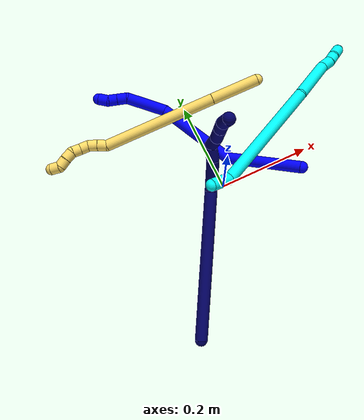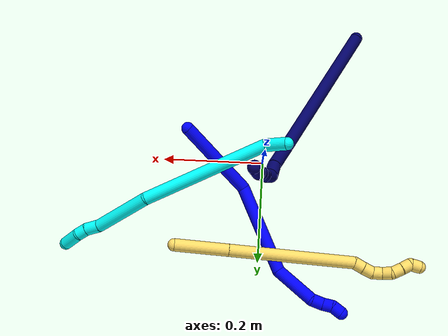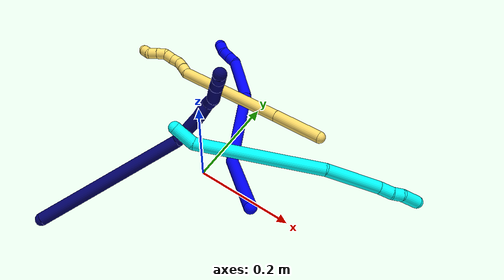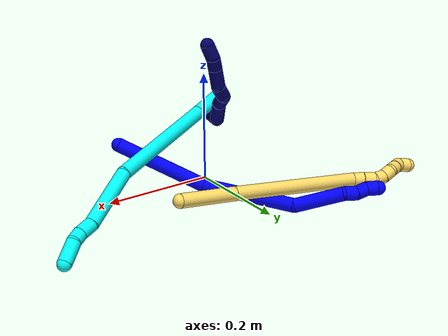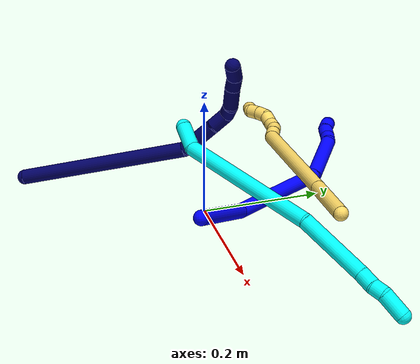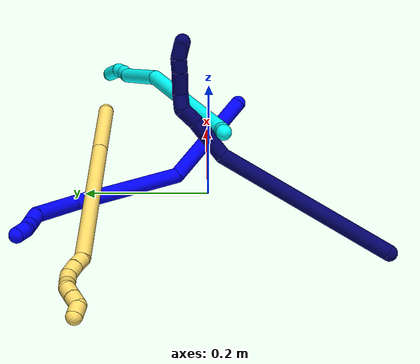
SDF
<sdf version="1.7">
 <world name="default">
  <model name="photoneo_s_sensor">
   <static>1</static>
   <pose>0 0 2 1.57079 1.57079 3.14159</pose>
   <link name="link">
    <inertial><mass>0.1</mass></inertial>
    <sensor name="sensor" type="depth">
     <update_rate>30</update_rate>
     <camera>
      <horizontal_fov>1.22</horizontal_fov>
      <image><width>1920</width><height>1200</height><format>B8G8R8</format></image>
      <clip><near>0.1</near><far>4</far></clip>
      <depth_camera><output>points</output></depth_camera>
     </camera>
     <plugin name="camera_plugin" filename="libgazebo_ros_depth_camera.so">
      <baseline>0.2</baseline>
      <alwaysOn>1</alwaysOn>
      <updateRate>0.0</updateRate>
      <cameraName>camera_ir</cameraName>
      <imageTopicName>/camera/color/image_raw</imageTopicName>
      <cameraInfoTopicName>/camera/color/camera_info</cameraInfoTopicName>
      <depthImageTopicName>/camera/depth/image_raw</depthImageTopicName>
      <depthImageCameraInfoTopicName>/camera/depth/camera_info</depthImageCameraInfoTopicName>
      <pointCloudTopicName>/camera/depth/points</pointCloudTopicName>
      <frameName>fr_optical</frameName>
      <pointCloudCutoff>0.1</pointCloudCutoff>
      <pointCloudCutoffMax>2.0</pointCloudCutoffMax>
      <distortionK1>0</distortionK1>
      <distortionK2>0</distortionK2>
      <distortionK3>0</distortionK3>
      <distortionT1>0</distortionT1>
      <distortionT2>0</distortionT2>
      <CxPrime>0</CxPrime>
      <Cx>0</Cx>
      <Cy>0</Cy>
      <focalLength>0</focalLength>
      <hackBaseline>0</hackBaseline>
     </plugin>
    </sensor>
   </link>
  </model>
  <model name="bin">
   <static>1</static>
   <link name="bottom">
    <collision name="collision-bottom">
     <pose>0 0 -0.01 0 -0 0</pose>
     <geometry><box><size>0.8 0.6 0.02</size></box></geometry>
     <surface>
      <friction><ode><mu>100</mu><mu2>100</mu2></ode></friction>
      <contact><collide_bitmask>65535</collide_bitmask></contact>
     </surface>
    </collision>
   </link>
   <link name="west_wall">
    <collision name="collision-west_wall">
     <pose>-0.41 0 0.1 0 -0 0</pose>
     <geometry><box><size>0.02 0.6 0.2</size></box></geometry>
     <surface>
      <friction><ode><mu>100</mu><mu2>100</mu2></ode></friction>
      <contact><collide_bitmask>65535</collide_bitmask></contact>
     </surface>
    </collision>
   </link>
   <link name="east_wall">
    <collision name="collision-east_wall">
     <pose>0.41 0 0.1 0 -0 0</pose>
     <geometry><box><size>0.02 0.6 0.2</size></box></geometry>
     <surface>
      <friction><ode><mu>100</mu><mu2>100</mu2></ode></friction>
      <contact><collide_bitmask>65535</collide_bitmask></contact>
     </surface>
    </collision>
   </link>
   <link name="south_wall">
    <collision name="collision-south_wall">
     <pose>0 -0.31 0.1 0 -0 0</pose>
     <geometry><box><size>0.8 0.02 0.2</size></box></geometry>
     <surface>
      <friction><ode><mu>100</mu><mu2>100</mu2></ode></friction>
      <contact><collide_bitmask>65535</collide_bitmask></contact>
     </surface>
    </collision>
   </link>
   <link name="north_wall">
    <collision name="collision-north_wall">
     <pose>0 0.31 0.1 0 -0 0</pose>
     <geometry><box><size>0.8 0.02 0.2</size></box></geometry>
     <surface>
      <friction><ode><mu>100</mu><mu2>100</mu2></ode></friction>
      <contact><collide_bitmask>65535</collide_bitmask></contact>
     </surface>
    </collision>
   </link>
  </model>
  <model name="1">
   <static>0</static>
   <link name="1">
    <collision name="collision-cylinder-e_1_1_4">
     <pose>-0.01667 0.081666 0.012676 -1.41681 -0.199033 0.170673</pose>
     <geometry><cylinder><radius>0.0125</radius><length>0.168617</length></cylinder></geometry>
     <surface>
      <friction><ode><mu>1.16</mu><mu2>1.16</mu2><slip1>0</slip1><slip2>0</slip2></ode></friction>
      <contact><ode><kp>1e+06</kp><kd>1</kd><max_vel>0</max_vel><min_depth>0.001</min_depth></ode></contact>
     </surface>
    </collision>
    <visual name="visual-cylinder-e_1_1_4">
     <pose>-0.01667 0.081666 0.012676 -1.41681 -0.199033 0.170673</pose>
     <geometry><cylinder><radius>0.0125</radius><length>0.168617</length></cylinder></geometry>
     <material><ambient>0 0 1 1</ambient></material>
    </visual>
    <collision name="collision-cylinder-e_2_4_5">
     <pose>-0.069349 0.225975 0.079307 -0.859769 -0.410774 0.190448</pose>
     <geometry><cylinder><radius>0.0125</radius><length>0.180354</length></cylinder></geometry>
     <surface>
      <friction><ode><mu>1.16</mu><mu2>1.16</mu2><slip1>0</slip1><slip2>0</slip2></ode></friction>
      <contact><ode><kp>1e+06</kp><kd>1</kd><max_vel>0</max_vel><min_depth>0.001</min_depth></ode></contact>
     </surface>
    </collision>
    <visual name="visual-cylinder-e_2_4_5">
     <pose>-0.069349 0.225975 0.079307 -0.859769 -0.410774 0.190448</pose>
     <geometry><cylinder><radius>0.0125</radius><length>0.180354</length></cylinder></geometry>
     <material><ambient>0 0 1 1</ambient></material>
    </visual>
    <collision name="collision-cylinder-e_3_5_6">
     <pose>-0.139114 0.314005 0.14421 -1.16363 -0.884554 0.603938</pose>
     <geometry><cylinder><radius>0.0125</radius><length>0.087267</length></cylinder></geometry>
     <surface>
      <friction><ode><mu>1.16</mu><mu2>1.16</mu2><slip1>0</slip1><slip2>0</slip2></ode></friction>
      <contact><ode><kp>1e+06</kp><kd>1</kd><max_vel>0</max_vel><min_depth>0.001</min_depth></ode></contact>
     </surface>
    </collision>
    <visual name="visual-cylinder-e_3_5_6">
     <pose>-0.139114 0.314005 0.14421 -1.16363 -0.884554 0.603938</pose>
     <geometry><cylinder><radius>0.0125</radius><length>0.087267</length></cylinder></geometry>
     <material><ambient>0 0 1 1</ambient></material>
    </visual>
    <collision name="collision-cylinder-e_4_6_7">
     <pose>-0.179678 0.348511 0.153518 -1.7489 -0.633638 0.747441</pose>
     <geometry><cylinder><radius>0.0125</radius><length>0.022995</length></cylinder></geometry>
     <surface>
      <friction><ode><mu>1.16</mu><mu2>1.16</mu2><slip1>0</slip1><slip2>0</slip2></ode></friction>
      <contact><ode><kp>1e+06</kp><kd>1</kd><max_vel>0</max_vel><min_depth>0.001</min_depth></ode></contact>
     </surface>
    </collision>
    <visual name="visual-cylinder-e_4_6_7">
     <pose>-0.179678 0.348511 0.153518 -1.7489 -0.633638 0.747441</pose>
     <geometry><cylinder><radius>0.0125</radius><length>0.022995</length></cylinder></geometry>
     <material><ambient>0 0 1 1</ambient></material>
    </visual>
    <collision name="collision-cylinder-e_5_7_8">
     <pose>-0.194711 0.363175 0.14968 -1.94796 -0.943459 1.28802</pose>
     <geometry><cylinder><radius>0.0125</radius><length>0.02032</length></cylinder></geometry>
     <surface>
      <friction><ode><mu>1.16</mu><mu2>1.16</mu2><slip1>0</slip1><slip2>0</slip2></ode></friction>
      <contact><ode><kp>1e+06</kp><kd>1</kd><max_vel>0</max_vel><min_depth>0.001</min_depth></ode></contact>
     </surface>
    </collision>
    <visual name="visual-cylinder-e_5_7_8">
     <pose>-0.194711 0.363175 0.14968 -1.94796 -0.943459 1.28802</pose>
     <geometry><cylinder><radius>0.0125</radius><length>0.02032</length></cylinder></geometry>
     <material><ambient>0 0 1 1</ambient></material>
    </visual>
    <collision name="collision-cylinder-e_6_8_2">
     <pose>-0.209609 0.376286 0.149136 -1.35579 -0.711162 0.581111</pose>
     <geometry><cylinder><radius>0.0125</radius><length>0.020448</length></cylinder></geometry>
     <surface>
      <friction><ode><mu>1.16</mu><mu2>1.16</mu2><slip1>0</slip1><slip2>0</slip2></ode></friction>
      <contact><ode><kp>1e+06</kp><kd>1</kd><max_vel>0</max_vel><min_depth>0.001</min_depth></ode></contact>
     </surface>
    </collision>
    <visual name="visual-cylinder-e_6_8_2">
     <pose>-0.209609 0.376286 0.149136 -1.35579 -0.711162 0.581111</pose>
     <geometry><cylinder><radius>0.0125</radius><length>0.020448</length></cylinder></geometry>
     <material><ambient>0 0 1 1</ambient></material>
    </visual>
    <collision name="collision-sphere-2">
     <pose>-0.216282 0.383854 0.150789 0 -0 0</pose>
     <geometry><sphere><radius>0.0125</radius></sphere></geometry>
     <surface>
      <friction><ode><mu>1.16</mu><mu2>1.16</mu2><slip1>0</slip1><slip2>0</slip2></ode></friction>
      <contact><ode><kp>1e+06</kp><kd>1</kd><max_vel>0</max_vel><min_depth>0.001</min_depth></ode></contact>
     </surface>
    </collision>
    <visual name="visual-sphere-2">
     <pose>-0.216282 0.383854 0.150789 0 -0 0</pose>
     <geometry><sphere><radius>0.0125</radius></sphere></geometry>
     <material><ambient>0 0 1 1</ambient></material>
    </visual>
    <collision name="collision-sphere-4">
     <pose>-0.033339 0.163332 0.025352 0 -0 0</pose>
     <geometry><sphere><radius>0.0125</radius></sphere></geometry>
     <surface>
      <friction><ode><mu>1.16</mu><mu2>1.16</mu2><slip1>0</slip1><slip2>0</slip2></ode></friction>
      <contact><ode><kp>1e+06</kp><kd>1</kd><max_vel>0</max_vel><min_depth>0.001</min_depth></ode></contact>
     </surface>
    </collision>
    <visual name="visual-sphere-4">
     <pose>-0.033339 0.163332 0.025352 0 -0 0</pose>
     <geometry><sphere><radius>0.0125</radius></sphere></geometry>
     <material><ambient>0 0 1 1</ambient></material>
    </visual>
    <collision name="collision-sphere-1">
     <geometry><sphere><radius>0.0125</radius></sphere></geometry>
     <surface>
      <friction><ode><mu>1.16</mu><mu2>1.16</mu2><slip1>0</slip1><slip2>0</slip2></ode></friction>
      <contact><ode><kp>1e+06</kp><kd>1</kd><max_vel>0</max_vel><min_depth>0.001</min_depth></ode></contact>
     </surface>
    </collision>
    <visual name="visual-sphere-1">
     <geometry><sphere><radius>0.0125</radius></sphere></geometry>
     <material><ambient>0 0 1 1</ambient></material>
    </visual>
    <collision name="collision-sphere-8">
     <pose>-0.202936 0.368719 0.147483 0 -0 0</pose>
     <geometry><sphere><radius>0.0125</radius></sphere></geometry>
     <surface>
      <friction><ode><mu>1.16</mu><mu2>1.16</mu2><slip1>0</slip1><slip2>0</slip2></ode></friction>
      <contact><ode><kp>1e+06</kp><kd>1</kd><max_vel>0</max_vel><min_depth>0.001</min_depth></ode></contact>
     </surface>
    </collision>
    <visual name="visual-sphere-8">
     <pose>-0.202936 0.368719 0.147483 0 -0 0</pose>
     <geometry><sphere><radius>0.0125</radius></sphere></geometry>
     <material><ambient>0 0 1 1</ambient></material>
    </visual>
    <collision name="collision-sphere-5">
     <pose>-0.105358 0.288617 0.133262 0 -0 0</pose>
     <geometry><sphere><radius>0.0125</radius></sphere></geometry>
     <surface>
      <friction><ode><mu>1.16</mu><mu2>1.16</mu2><slip1>0</slip1><slip2>0</slip2></ode></friction>
      <contact><ode><kp>1e+06</kp><kd>1</kd><max_vel>0</max_vel><min_depth>0.001</min_depth></ode></contact>
     </surface>
    </collision>
    <visual name="visual-sphere-5">
     <pose>-0.105358 0.288617 0.133262 0 -0 0</pose>
     <geometry><sphere><radius>0.0125</radius></sphere></geometry>
     <material><ambient>0 0 1 1</ambient></material>
    </visual>
    <collision name="collision-sphere-6">
     <pose>-0.17287 0.339392 0.155159 0 -0 0</pose>
     <geometry><sphere><radius>0.0125</radius></sphere></geometry>
     <surface>
      <friction><ode><mu>1.16</mu><mu2>1.16</mu2><slip1>0</slip1><slip2>0</slip2></ode></friction>
      <contact><ode><kp>1e+06</kp><kd>1</kd><max_vel>0</max_vel><min_depth>0.001</min_depth></ode></contact>
     </surface>
    </collision>
    <visual name="visual-sphere-6">
     <pose>-0.17287 0.339392 0.155159 0 -0 0</pose>
     <geometry><sphere><radius>0.0125</radius></sphere></geometry>
     <material><ambient>0 0 1 1</ambient></material>
    </visual>
    <collision name="collision-sphere-7">
     <pose>-0.186485 0.35763 0.151876 0 -0 0</pose>
     <geometry><sphere><radius>0.0125</radius></sphere></geometry>
     <surface>
      <friction><ode><mu>1.16</mu><mu2>1.16</mu2><slip1>0</slip1><slip2>0</slip2></ode></friction>
      <contact><ode><kp>1e+06</kp><kd>1</kd><max_vel>0</max_vel><min_depth>0.001</min_depth></ode></contact>
     </surface>
    </collision>
    <visual name="visual-sphere-7">
     <pose>-0.186485 0.35763 0.151876 0 -0 0</pose>
     <geometry><sphere><radius>0.0125</radius></sphere></geometry>
     <material><ambient>0 0 1 1</ambient></material>
    </visual>
    <inertial>
     <pose>-0.079664 0.210031 0.077293 0 -0 0</pose>
     <mass>0.5</mass>
     <inertia>
      <ixx>0.001032</ixx>
      <ixy>0</ixy>
      <ixz>0</ixz>
      <iyy>0.000674</iyy>
      <iyz>0</iyz>
      <izz>-0.000437</izz>
     </inertia>
    </inertial>
   </link>
   <pose>0.149135 -0.051811 0.082267 -1.23231 0.852265 -0.203313</pose>
  </model>
  <model name="3">
   <static>0</static>
   <link name="3">
    <collision name="collision-cylinder-e_1_1_4">
     <pose>0.013129 -0.010411 -0.01483 2.52952 0.627028 1.59654</pose>
     <geometry><cylinder><radius>0.0125</radius><length>0.044751</length></cylinder></geometry>
     <surface>
      <friction><ode><mu>1.16</mu><mu2>1.16</mu2><slip1>0</slip1><slip2>0</slip2></ode></friction>
      <contact><ode><kp>1e+06</kp><kd>1</kd><max_vel>0</max_vel><min_depth>0.001</min_depth></ode></contact>
     </surface>
    </collision>
    <visual name="visual-cylinder-e_1_1_4">
     <pose>0.013129 -0.010411 -0.01483 2.52952 0.627028 1.59654</pose>
     <geometry><cylinder><radius>0.0125</radius><length>0.044751</length></cylinder></geometry>
     <material><ambient>0.003922 1 0.996078 1</ambient></material>
    </visual>
    <collision name="collision-cylinder-e_2_4_5">
     <pose>0.13179 -0.026772 -0.095726 3.05177 1.00964 2.97929</pose>
     <geometry><cylinder><radius>0.0125</radius><length>0.249299</length></cylinder></geometry>
     <surface>
      <friction><ode><mu>1.16</mu><mu2>1.16</mu2><slip1>0</slip1><slip2>0</slip2></ode></friction>
      <contact><ode><kp>1e+06</kp><kd>1</kd><max_vel>0</max_vel><min_depth>0.001</min_depth></ode></contact>
     </surface>
    </collision>
    <visual name="visual-cylinder-e_2_4_5">
     <pose>0.13179 -0.026772 -0.095726 3.05177 1.00964 2.97929</pose>
     <geometry><cylinder><radius>0.0125</radius><length>0.249299</length></cylinder></geometry>
     <material><ambient>0.003922 1 0.996078 1</ambient></material>
    </visual>
    <collision name="collision-cylinder-e_3_5_6">
     <pose>0.275433 -0.035772 -0.206206 3.07303 0.707993 2.95653</pose>
     <geometry><cylinder><radius>0.0125</radius><length>0.117202</length></cylinder></geometry>
     <surface>
      <friction><ode><mu>1.16</mu><mu2>1.16</mu2><slip1>0</slip1><slip2>0</slip2></ode></friction>
      <contact><ode><kp>1e+06</kp><kd>1</kd><max_vel>0</max_vel><min_depth>0.001</min_depth></ode></contact>
     </surface>
    </collision>
    <visual name="visual-cylinder-e_3_5_6">
     <pose>0.275433 -0.035772 -0.206206 3.07303 0.707993 2.95653</pose>
     <geometry><cylinder><radius>0.0125</radius><length>0.117202</length></cylinder></geometry>
     <material><ambient>0.003922 1 0.996078 1</ambient></material>
    </visual>
    <collision name="collision-cylinder-e_4_6_7">
     <pose>0.324003 -0.042079 -0.258889 2.76638 0.866522 2.36272</pose>
     <geometry><cylinder><radius>0.0125</radius><length>0.027455</length></cylinder></geometry>
     <surface>
      <friction><ode><mu>1.16</mu><mu2>1.16</mu2><slip1>0</slip1><slip2>0</slip2></ode></friction>
      <contact><ode><kp>1e+06</kp><kd>1</kd><max_vel>0</max_vel><min_depth>0.001</min_depth></ode></contact>
     </surface>
    </collision>
    <visual name="visual-cylinder-e_4_6_7">
     <pose>0.324003 -0.042079 -0.258889 2.76638 0.866522 2.36272</pose>
     <geometry><cylinder><radius>0.0125</radius><length>0.027455</length></cylinder></geometry>
     <material><ambient>0.003922 1 0.996078 1</ambient></material>
    </visual>
    <collision name="collision-cylinder-e_5_7_8">
     <pose>0.342283 -0.045136 -0.273892 -3.11192 0.859579 -3.07687</pose>
     <geometry><cylinder><radius>0.0125</radius><length>0.02064</length></cylinder></geometry>
     <surface>
      <friction><ode><mu>1.16</mu><mu2>1.16</mu2><slip1>0</slip1><slip2>0</slip2></ode></friction>
      <contact><ode><kp>1e+06</kp><kd>1</kd><max_vel>0</max_vel><min_depth>0.001</min_depth></ode></contact>
     </surface>
    </collision>
    <visual name="visual-cylinder-e_5_7_8">
     <pose>0.342283 -0.045136 -0.273892 -3.11192 0.859579 -3.07687</pose>
     <geometry><cylinder><radius>0.0125</radius><length>0.02064</length></cylinder></geometry>
     <material><ambient>0.003922 1 0.996078 1</ambient></material>
    </visual>
    <collision name="collision-cylinder-e_6_8_2">
     <pose>0.359912 -0.045959 -0.298398 3.08413 0.503722 2.91916</pose>
     <geometry><cylinder><radius>0.0125</radius><length>0.040653</length></cylinder></geometry>
     <surface>
      <friction><ode><mu>1.16</mu><mu2>1.16</mu2><slip1>0</slip1><slip2>0</slip2></ode></friction>
      <contact><ode><kp>1e+06</kp><kd>1</kd><max_vel>0</max_vel><min_depth>0.001</min_depth></ode></contact>
     </surface>
    </collision>
    <visual name="visual-cylinder-e_6_8_2">
     <pose>0.359912 -0.045959 -0.298398 3.08413 0.503722 2.91916</pose>
     <geometry><cylinder><radius>0.0125</radius><length>0.040653</length></cylinder></geometry>
     <material><ambient>0.003922 1 0.996078 1</ambient></material>
    </visual>
    <collision name="collision-sphere-2">
     <pose>0.369723 -0.046981 -0.31617 0 -0 0</pose>
     <geometry><sphere><radius>0.0125</radius></sphere></geometry>
     <surface>
      <friction><ode><mu>1.16</mu><mu2>1.16</mu2><slip1>0</slip1><slip2>0</slip2></ode></friction>
      <contact><ode><kp>1e+06</kp><kd>1</kd><max_vel>0</max_vel><min_depth>0.001</min_depth></ode></contact>
     </surface>
    </collision>
    <visual name="visual-sphere-2">
     <pose>0.369723 -0.046981 -0.31617 0 -0 0</pose>
     <geometry><sphere><radius>0.0125</radius></sphere></geometry>
     <material><ambient>0.003922 1 0.996078 1</ambient></material>
    </visual>
    <collision name="collision-sphere-4">
     <pose>0.026257 -0.020821 -0.029659 0 -0 0</pose>
     <geometry><sphere><radius>0.0125</radius></sphere></geometry>
     <surface>
      <friction><ode><mu>1.16</mu><mu2>1.16</mu2><slip1>0</slip1><slip2>0</slip2></ode></friction>
      <contact><ode><kp>1e+06</kp><kd>1</kd><max_vel>0</max_vel><min_depth>0.001</min_depth></ode></contact>
     </surface>
    </collision>
    <visual name="visual-sphere-4">
     <pose>0.026257 -0.020821 -0.029659 0 -0 0</pose>
     <geometry><sphere><radius>0.0125</radius></sphere></geometry>
     <material><ambient>0.003922 1 0.996078 1</ambient></material>
    </visual>
    <collision name="collision-sphere-1">
     <geometry><sphere><radius>0.0125</radius></sphere></geometry>
     <surface>
      <friction><ode><mu>1.16</mu><mu2>1.16</mu2><slip1>0</slip1><slip2>0</slip2></ode></friction>
      <contact><ode><kp>1e+06</kp><kd>1</kd><max_vel>0</max_vel><min_depth>0.001</min_depth></ode></contact>
     </surface>
    </collision>
    <visual name="visual-sphere-1">
     <geometry><sphere><radius>0.0125</radius></sphere></geometry>
     <material><ambient>0.003922 1 0.996078 1</ambient></material>
    </visual>
    <collision name="collision-sphere-8">
     <pose>0.350101 -0.044936 -0.280626 0 -0 0</pose>
     <geometry><sphere><radius>0.0125</radius></sphere></geometry>
     <surface>
      <friction><ode><mu>1.16</mu><mu2>1.16</mu2><slip1>0</slip1><slip2>0</slip2></ode></friction>
      <contact><ode><kp>1e+06</kp><kd>1</kd><max_vel>0</max_vel><min_depth>0.001</min_depth></ode></contact>
     </surface>
    </collision>
    <visual name="visual-sphere-8">
     <pose>0.350101 -0.044936 -0.280626 0 -0 0</pose>
     <geometry><sphere><radius>0.0125</radius></sphere></geometry>
     <material><ambient>0.003922 1 0.996078 1</ambient></material>
    </visual>
    <collision name="collision-sphere-5">
     <pose>0.237324 -0.032722 -0.161793 0 -0 0</pose>
     <geometry><sphere><radius>0.0125</radius></sphere></geometry>
     <surface>
      <friction><ode><mu>1.16</mu><mu2>1.16</mu2><slip1>0</slip1><slip2>0</slip2></ode></friction>
      <contact><ode><kp>1e+06</kp><kd>1</kd><max_vel>0</max_vel><min_depth>0.001</min_depth></ode></contact>
     </surface>
    </collision>
    <visual name="visual-sphere-5">
     <pose>0.237324 -0.032722 -0.161793 0 -0 0</pose>
     <geometry><sphere><radius>0.0125</radius></sphere></geometry>
     <material><ambient>0.003922 1 0.996078 1</ambient></material>
    </visual>
    <collision name="collision-sphere-6">
     <pose>0.313541 -0.038821 -0.250619 0 -0 0</pose>
     <geometry><sphere><radius>0.0125</radius></sphere></geometry>
     <surface>
      <friction><ode><mu>1.16</mu><mu2>1.16</mu2><slip1>0</slip1><slip2>0</slip2></ode></friction>
      <contact><ode><kp>1e+06</kp><kd>1</kd><max_vel>0</max_vel><min_depth>0.001</min_depth></ode></contact>
     </surface>
    </collision>
    <visual name="visual-sphere-6">
     <pose>0.313541 -0.038821 -0.250619 0 -0 0</pose>
     <geometry><sphere><radius>0.0125</radius></sphere></geometry>
     <material><ambient>0.003922 1 0.996078 1</ambient></material>
    </visual>
    <collision name="collision-sphere-7">
     <pose>0.334465 -0.045336 -0.267159 0 -0 0</pose>
     <geometry><sphere><radius>0.0125</radius></sphere></geometry>
     <surface>
      <friction><ode><mu>1.16</mu><mu2>1.16</mu2><slip1>0</slip1><slip2>0</slip2></ode></friction>
      <contact><ode><kp>1e+06</kp><kd>1</kd><max_vel>0</max_vel><min_depth>0.001</min_depth></ode></contact>
     </surface>
    </collision>
    <visual name="visual-sphere-7">
     <pose>0.334465 -0.045336 -0.267159 0 -0 0</pose>
     <geometry><sphere><radius>0.0125</radius></sphere></geometry>
     <material><ambient>0.003922 1 0.996078 1</ambient></material>
    </visual>
    <inertial>
     <pose>0.192631 -0.030576 -0.147175 0 -0 0</pose>
     <mass>0.5</mass>
     <inertia>
      <ixx>-0.000625</ixx>
      <ixy>0</ixy>
      <ixz>0</ixz>
      <iyy>0.001584</iyy>
      <iyz>0</iyz>
      <izz>-0.001154</izz>
     </inertia>
    </inertial>
   </link>
   <pose>-0.041315 -0.022573 0.141109 0.260429 -0.440562 0.368485</pose>
  </model>
  <model name="5">
   <static>0</static>
   <link name="5">
    <collision name="collision-cylinder-e_1_1_4">
     <pose>-0.033826 0.000779 0.040991 -0.019004 -0.689836 0.006828</pose>
     <geometry><cylinder><radius>0.0125</radius><length>0.106303</length></cylinder></geometry>
     <surface>
      <friction><ode><mu>1.16</mu><mu2>1.16</mu2><slip1>0</slip1><slip2>0</slip2></ode></friction>
      <contact><ode><kp>1e+06</kp><kd>1</kd><max_vel>0</max_vel><min_depth>0.001</min_depth></ode></contact>
     </surface>
    </collision>
    <visual name="visual-cylinder-e_1_1_4">
     <pose>-0.033826 0.000779 0.040991 -0.019004 -0.689836 0.006828</pose>
     <geometry><cylinder><radius>0.0125</radius><length>0.106303</length></cylinder></geometry>
     <material><ambient>1 0.858824 0.4 1</ambient></material>
    </visual>
    <collision name="collision-cylinder-e_2_4_5">
     <pose>-0.147277 0.001997 0.180029 -0.004477 -0.682073 0.001589</pose>
     <geometry><cylinder><radius>0.0125</radius><length>0.252614</length></cylinder></geometry>
     <surface>
      <friction><ode><mu>1.16</mu><mu2>1.16</mu2><slip1>0</slip1><slip2>0</slip2></ode></friction>
      <contact><ode><kp>1e+06</kp><kd>1</kd><max_vel>0</max_vel><min_depth>0.001</min_depth></ode></contact>
     </surface>
    </collision>
    <visual name="visual-cylinder-e_2_4_5">
     <pose>-0.147277 0.001997 0.180029 -0.004477 -0.682073 0.001589</pose>
     <geometry><cylinder><radius>0.0125</radius><length>0.252614</length></cylinder></geometry>
     <material><ambient>1 0.858824 0.4 1</ambient></material>
    </visual>
    <collision name="collision-cylinder-e_3_5_6">
     <pose>-0.23574 0.000735 0.282569 0.361908 -1.07296 -0.216739</pose>
     <geometry><cylinder><radius>0.0125</radius><length>0.020121</length></cylinder></geometry>
     <surface>
      <friction><ode><mu>1.16</mu><mu2>1.16</mu2><slip1>0</slip1><slip2>0</slip2></ode></friction>
      <contact><ode><kp>1e+06</kp><kd>1</kd><max_vel>0</max_vel><min_depth>0.001</min_depth></ode></contact>
     </surface>
    </collision>
    <visual name="visual-cylinder-e_3_5_6">
     <pose>-0.23574 0.000735 0.282569 0.361908 -1.07296 -0.216739</pose>
     <geometry><cylinder><radius>0.0125</radius><length>0.020121</length></cylinder></geometry>
     <material><ambient>1 0.858824 0.4 1</ambient></material>
    </visual>
    <collision name="collision-cylinder-e_4_6_7">
     <pose>-0.253145 -0.003115 0.292554 0.372988 -0.967788 -0.19769</pose>
     <geometry><cylinder><radius>0.0125</radius><length>0.0208</length></cylinder></geometry>
     <surface>
      <friction><ode><mu>1.16</mu><mu2>1.16</mu2><slip1>0</slip1><slip2>0</slip2></ode></friction>
      <contact><ode><kp>1e+06</kp><kd>1</kd><max_vel>0</max_vel><min_depth>0.001</min_depth></ode></contact>
     </surface>
    </collision>
    <visual name="visual-cylinder-e_4_6_7">
     <pose>-0.253145 -0.003115 0.292554 0.372988 -0.967788 -0.19769</pose>
     <geometry><cylinder><radius>0.0125</radius><length>0.0208</length></cylinder></geometry>
     <material><ambient>1 0.858824 0.4 1</ambient></material>
    </visual>
    <collision name="collision-cylinder-e_5_7_8">
     <pose>-0.268409 -0.003934 0.30546 -0.177613 -0.726857 0.067703</pose>
     <geometry><cylinder><radius>0.0125</radius><length>0.020158</length></cylinder></geometry>
     <surface>
      <friction><ode><mu>1.16</mu><mu2>1.16</mu2><slip1>0</slip1><slip2>0</slip2></ode></friction>
      <contact><ode><kp>1e+06</kp><kd>1</kd><max_vel>0</max_vel><min_depth>0.001</min_depth></ode></contact>
     </surface>
    </collision>
    <visual name="visual-cylinder-e_5_7_8">
     <pose>-0.268409 -0.003934 0.30546 -0.177613 -0.726857 0.067703</pose>
     <geometry><cylinder><radius>0.0125</radius><length>0.020158</length></cylinder></geometry>
     <material><ambient>1 0.858824 0.4 1</ambient></material>
    </visual>
    <collision name="collision-cylinder-e_6_8_9">
     <pose>-0.282014 0.00178 0.318626 -0.651003 -0.762441 0.268931</pose>
     <geometry><cylinder><radius>0.0125</radius><length>0.020001</length></cylinder></geometry>
     <surface>
      <friction><ode><mu>1.16</mu><mu2>1.16</mu2><slip1>0</slip1><slip2>0</slip2></ode></friction>
      <contact><ode><kp>1e+06</kp><kd>1</kd><max_vel>0</max_vel><min_depth>0.001</min_depth></ode></contact>
     </surface>
    </collision>
    <visual name="visual-cylinder-e_6_8_9">
     <pose>-0.282014 0.00178 0.318626 -0.651003 -0.762441 0.268931</pose>
     <geometry><cylinder><radius>0.0125</radius><length>0.020001</length></cylinder></geometry>
     <material><ambient>1 0.858824 0.4 1</ambient></material>
    </visual>
    <collision name="collision-cylinder-e_7_9_10">
     <pose>-0.291796 0.00978 0.333249 -0.387323 -0.291537 0.057569</pose>
     <geometry><cylinder><radius>0.0125</radius><length>0.020003</length></cylinder></geometry>
     <surface>
      <friction><ode><mu>1.16</mu><mu2>1.16</mu2><slip1>0</slip1><slip2>0</slip2></ode></friction>
      <contact><ode><kp>1e+06</kp><kd>1</kd><max_vel>0</max_vel><min_depth>0.001</min_depth></ode></contact>
     </surface>
    </collision>
    <visual name="visual-cylinder-e_7_9_10">
     <pose>-0.291796 0.00978 0.333249 -0.387323 -0.291537 0.057569</pose>
     <geometry><cylinder><radius>0.0125</radius><length>0.020003</length></cylinder></geometry>
     <material><ambient>1 0.858824 0.4 1</ambient></material>
    </visual>
    <collision name="collision-cylinder-e_8_10_11">
     <pose>-0.296731 0.016656 0.351346 -0.339401 -0.207519 0.035682</pose>
     <geometry><cylinder><radius>0.0125</radius><length>0.02</length></cylinder></geometry>
     <surface>
      <friction><ode><mu>1.16</mu><mu2>1.16</mu2><slip1>0</slip1><slip2>0</slip2></ode></friction>
      <contact><ode><kp>1e+06</kp><kd>1</kd><max_vel>0</max_vel><min_depth>0.001</min_depth></ode></contact>
     </surface>
    </collision>
    <visual name="visual-cylinder-e_8_10_11">
     <pose>-0.296731 0.016656 0.351346 -0.339401 -0.207519 0.035682</pose>
     <geometry><cylinder><radius>0.0125</radius><length>0.02</length></cylinder></geometry>
     <material><ambient>1 0.858824 0.4 1</ambient></material>
    </visual>
    <collision name="collision-cylinder-e_9_11_2">
     <pose>-0.305672 0.018186 0.367621 0.240397 -0.758826 -0.096244</pose>
     <geometry><cylinder><radius>0.0125</radius><length>0.02</length></cylinder></geometry>
     <surface>
      <friction><ode><mu>1.16</mu><mu2>1.16</mu2><slip1>0</slip1><slip2>0</slip2></ode></friction>
      <contact><ode><kp>1e+06</kp><kd>1</kd><max_vel>0</max_vel><min_depth>0.001</min_depth></ode></contact>
     </surface>
    </collision>
    <visual name="visual-cylinder-e_9_11_2">
     <pose>-0.305672 0.018186 0.367621 0.240397 -0.758826 -0.096244</pose>
     <geometry><cylinder><radius>0.0125</radius><length>0.02</length></cylinder></geometry>
     <material><ambient>1 0.858824 0.4 1</ambient></material>
    </visual>
    <collision name="collision-sphere-2">
     <pose>-0.312553 0.016459 0.374669 0 -0 0</pose>
     <geometry><sphere><radius>0.0125</radius></sphere></geometry>
     <surface>
      <friction><ode><mu>1.16</mu><mu2>1.16</mu2><slip1>0</slip1><slip2>0</slip2></ode></friction>
      <contact><ode><kp>1e+06</kp><kd>1</kd><max_vel>0</max_vel><min_depth>0.001</min_depth></ode></contact>
     </surface>
    </collision>
    <visual name="visual-sphere-2">
     <pose>-0.312553 0.016459 0.374669 0 -0 0</pose>
     <geometry><sphere><radius>0.0125</radius></sphere></geometry>
     <material><ambient>1 0.858824 0.4 1</ambient></material>
    </visual>
    <collision name="collision-sphere-11">
     <pose>-0.298791 0.019914 0.360573 0 -0 0</pose>
     <geometry><sphere><radius>0.0125</radius></sphere></geometry>
     <surface>
      <friction><ode><mu>1.16</mu><mu2>1.16</mu2><slip1>0</slip1><slip2>0</slip2></ode></friction>
      <contact><ode><kp>1e+06</kp><kd>1</kd><max_vel>0</max_vel><min_depth>0.001</min_depth></ode></contact>
     </surface>
    </collision>
    <visual name="visual-sphere-11">
     <pose>-0.298791 0.019914 0.360573 0 -0 0</pose>
     <geometry><sphere><radius>0.0125</radius></sphere></geometry>
     <material><ambient>1 0.858824 0.4 1</ambient></material>
    </visual>
    <collision name="collision-sphere-10">
     <pose>-0.29467 0.013398 0.342118 0 -0 0</pose>
     <geometry><sphere><radius>0.0125</radius></sphere></geometry>
     <surface>
      <friction><ode><mu>1.16</mu><mu2>1.16</mu2><slip1>0</slip1><slip2>0</slip2></ode></friction>
      <contact><ode><kp>1e+06</kp><kd>1</kd><max_vel>0</max_vel><min_depth>0.001</min_depth></ode></contact>
     </surface>
    </collision>
    <visual name="visual-sphere-10">
     <pose>-0.29467 0.013398 0.342118 0 -0 0</pose>
     <geometry><sphere><radius>0.0125</radius></sphere></geometry>
     <material><ambient>1 0.858824 0.4 1</ambient></material>
    </visual>
    <collision name="collision-sphere-9">
     <pose>-0.288921 0.006162 0.324379 0 -0 0</pose>
     <geometry><sphere><radius>0.0125</radius></sphere></geometry>
     <surface>
      <friction><ode><mu>1.16</mu><mu2>1.16</mu2><slip1>0</slip1><slip2>0</slip2></ode></friction>
      <contact><ode><kp>1e+06</kp><kd>1</kd><max_vel>0</max_vel><min_depth>0.001</min_depth></ode></contact>
     </surface>
    </collision>
    <visual name="visual-sphere-9">
     <pose>-0.288921 0.006162 0.324379 0 -0 0</pose>
     <geometry><sphere><radius>0.0125</radius></sphere></geometry>
     <material><ambient>1 0.858824 0.4 1</ambient></material>
    </visual>
    <collision name="collision-sphere-4">
     <pose>-0.067652 0.001558 0.081982 0 -0 0</pose>
     <geometry><sphere><radius>0.0125</radius></sphere></geometry>
     <surface>
      <friction><ode><mu>1.16</mu><mu2>1.16</mu2><slip1>0</slip1><slip2>0</slip2></ode></friction>
      <contact><ode><kp>1e+06</kp><kd>1</kd><max_vel>0</max_vel><min_depth>0.001</min_depth></ode></contact>
     </surface>
    </collision>
    <visual name="visual-sphere-4">
     <pose>-0.067652 0.001558 0.081982 0 -0 0</pose>
     <geometry><sphere><radius>0.0125</radius></sphere></geometry>
     <material><ambient>1 0.858824 0.4 1</ambient></material>
    </visual>
    <collision name="collision-sphere-1">
     <geometry><sphere><radius>0.0125</radius></sphere></geometry>
     <surface>
      <friction><ode><mu>1.16</mu><mu2>1.16</mu2><slip1>0</slip1><slip2>0</slip2></ode></friction>
      <contact><ode><kp>1e+06</kp><kd>1</kd><max_vel>0</max_vel><min_depth>0.001</min_depth></ode></contact>
     </surface>
    </collision>
    <visual name="visual-sphere-1">
     <geometry><sphere><radius>0.0125</radius></sphere></geometry>
     <material><ambient>1 0.858824 0.4 1</ambient></material>
    </visual>
    <collision name="collision-sphere-8">
     <pose>-0.275107 -0.002603 0.312873 0 -0 0</pose>
     <geometry><sphere><radius>0.0125</radius></sphere></geometry>
     <surface>
      <friction><ode><mu>1.16</mu><mu2>1.16</mu2><slip1>0</slip1><slip2>0</slip2></ode></friction>
      <contact><ode><kp>1e+06</kp><kd>1</kd><max_vel>0</max_vel><min_depth>0.001</min_depth></ode></contact>
     </surface>
    </collision>
    <visual name="visual-sphere-8">
     <pose>-0.275107 -0.002603 0.312873 0 -0 0</pose>
     <geometry><sphere><radius>0.0125</radius></sphere></geometry>
     <material><ambient>1 0.858824 0.4 1</ambient></material>
    </visual>
    <collision name="collision-sphere-5">
     <pose>-0.226901 0.002436 0.278076 0 -0 0</pose>
     <geometry><sphere><radius>0.0125</radius></sphere></geometry>
     <surface>
      <friction><ode><mu>1.16</mu><mu2>1.16</mu2><slip1>0</slip1><slip2>0</slip2></ode></friction>
      <contact><ode><kp>1e+06</kp><kd>1</kd><max_vel>0</max_vel><min_depth>0.001</min_depth></ode></contact>
     </surface>
    </collision>
    <visual name="visual-sphere-5">
     <pose>-0.226901 0.002436 0.278076 0 -0 0</pose>
     <geometry><sphere><radius>0.0125</radius></sphere></geometry>
     <material><ambient>1 0.858824 0.4 1</ambient></material>
    </visual>
    <collision name="collision-sphere-6">
     <pose>-0.244579 -0.000966 0.287062 0 -0 0</pose>
     <geometry><sphere><radius>0.0125</radius></sphere></geometry>
     <surface>
      <friction><ode><mu>1.16</mu><mu2>1.16</mu2><slip1>0</slip1><slip2>0</slip2></ode></friction>
      <contact><ode><kp>1e+06</kp><kd>1</kd><max_vel>0</max_vel><min_depth>0.001</min_depth></ode></contact>
     </surface>
    </collision>
    <visual name="visual-sphere-6">
     <pose>-0.244579 -0.000966 0.287062 0 -0 0</pose>
     <geometry><sphere><radius>0.0125</radius></sphere></geometry>
     <material><ambient>1 0.858824 0.4 1</ambient></material>
    </visual>
    <collision name="collision-sphere-7">
     <pose>-0.261711 -0.005264 0.298047 0 -0 0</pose>
     <geometry><sphere><radius>0.0125</radius></sphere></geometry>
     <surface>
      <friction><ode><mu>1.16</mu><mu2>1.16</mu2><slip1>0</slip1><slip2>0</slip2></ode></friction>
      <contact><ode><kp>1e+06</kp><kd>1</kd><max_vel>0</max_vel><min_depth>0.001</min_depth></ode></contact>
     </surface>
    </collision>
    <visual name="visual-sphere-7">
     <pose>-0.261711 -0.005264 0.298047 0 -0 0</pose>
     <geometry><sphere><radius>0.0125</radius></sphere></geometry>
     <material><ambient>1 0.858824 0.4 1</ambient></material>
    </visual>
    <inertial>
     <pose>-0.15949 0.002772 0.190363 0 -0 0</pose>
     <mass>0.5</mass>
     <inertia>
      <ixx>0.001116</ixx>
      <ixy>0</ixy>
      <ixz>0</ixz>
      <iyy>0.001471</iyy>
      <iyz>0</iyz>
      <izz>0.000948</izz>
     </inertia>
    </inertial>
   </link>
   <pose>0.164198 0.173198 0.058998 2.12806 0.40248 -0.776604</pose>
  </model>
  <model name="7">
   <static>0</static>
   <link name="7">
    <collision name="collision-cylinder-e_1_1_4">
     <pose>0.07312 0.076086 -0.104051 -2.51021 0.515993 -1.3591</pose>
     <geometry><cylinder><radius>0.0125</radius><length>0.296394</length></cylinder></geometry>
     <surface>
      <friction><ode><mu>1.16</mu><mu2>1.16</mu2><slip1>0</slip1><slip2>0</slip2></ode></friction>
      <contact><ode><kp>1e+06</kp><kd>1</kd><max_vel>0</max_vel><min_depth>0.001</min_depth></ode></contact>
     </surface>
    </collision>
    <visual name="visual-cylinder-e_1_1_4">
     <pose>0.07312 0.076086 -0.104051 -2.51021 0.515993 -1.3591</pose>
     <geometry><cylinder><radius>0.0125</radius><length>0.296394</length></cylinder></geometry>
     <material><ambient>0.003922 0 0.403922 1</ambient></material>
    </visual>
    <collision name="collision-cylinder-e_2_4_5">
     <pose>0.153763 0.158793 -0.240119 -2.93768 0.226151 -1.6749</pose>
     <geometry><cylinder><radius>0.0125</radius><length>0.067097</length></cylinder></geometry>
     <surface>
      <friction><ode><mu>1.16</mu><mu2>1.16</mu2><slip1>0</slip1><slip2>0</slip2></ode></friction>
      <contact><ode><kp>1e+06</kp><kd>1</kd><max_vel>0</max_vel><min_depth>0.001</min_depth></ode></contact>
     </surface>
    </collision>
    <visual name="visual-cylinder-e_2_4_5">
     <pose>0.153763 0.158793 -0.240119 -2.93768 0.226151 -1.6749</pose>
     <geometry><cylinder><radius>0.0125</radius><length>0.067097</length></cylinder></geometry>
     <material><ambient>0.003922 0 0.403922 1</ambient></material>
    </visual>
    <collision name="collision-cylinder-e_3_5_6">
     <pose>0.166924 0.166559 -0.285825 -3.05811 0.389514 -2.72429</pose>
     <geometry><cylinder><radius>0.0125</radius><length>0.029699</length></cylinder></geometry>
     <surface>
      <friction><ode><mu>1.16</mu><mu2>1.16</mu2><slip1>0</slip1><slip2>0</slip2></ode></friction>
      <contact><ode><kp>1e+06</kp><kd>1</kd><max_vel>0</max_vel><min_depth>0.001</min_depth></ode></contact>
     </surface>
    </collision>
    <visual name="visual-cylinder-e_3_5_6">
     <pose>0.166924 0.166559 -0.285825 -3.05811 0.389514 -2.72429</pose>
     <geometry><cylinder><radius>0.0125</radius><length>0.029699</length></cylinder></geometry>
     <material><ambient>0.003922 0 0.403922 1</ambient></material>
    </visual>
    <collision name="collision-cylinder-e_4_6_7">
     <pose>0.168472 0.169868 -0.31052 -2.94752 -0.349778 2.13452</pose>
     <geometry><cylinder><radius>0.0125</radius><length>0.023879</length></cylinder></geometry>
     <surface>
      <friction><ode><mu>1.16</mu><mu2>1.16</mu2><slip1>0</slip1><slip2>0</slip2></ode></friction>
      <contact><ode><kp>1e+06</kp><kd>1</kd><max_vel>0</max_vel><min_depth>0.001</min_depth></ode></contact>
     </surface>
    </collision>
    <visual name="visual-cylinder-e_4_6_7">
     <pose>0.168472 0.169868 -0.31052 -2.94752 -0.349778 2.13452</pose>
     <geometry><cylinder><radius>0.0125</radius><length>0.023879</length></cylinder></geometry>
     <material><ambient>0.003922 0 0.403922 1</ambient></material>
    </visual>
    <collision name="collision-cylinder-e_5_7_8">
     <pose>0.158386 0.168775 -0.338038 2.94689 -0.34213 -2.11253</pose>
     <geometry><cylinder><radius>0.0125</radius><length>0.03573</length></cylinder></geometry>
     <surface>
      <friction><ode><mu>1.16</mu><mu2>1.16</mu2><slip1>0</slip1><slip2>0</slip2></ode></friction>
      <contact><ode><kp>1e+06</kp><kd>1</kd><max_vel>0</max_vel><min_depth>0.001</min_depth></ode></contact>
     </surface>
    </collision>
    <visual name="visual-cylinder-e_5_7_8">
     <pose>0.158386 0.168775 -0.338038 2.94689 -0.34213 -2.11253</pose>
     <geometry><cylinder><radius>0.0125</radius><length>0.03573</length></cylinder></geometry>
     <material><ambient>0.003922 0 0.403922 1</ambient></material>
    </visual>
    <collision name="collision-cylinder-e_6_8_9">
     <pose>0.149267 0.164262 -0.364488 3.01579 -0.302438 -2.3577</pose>
     <geometry><cylinder><radius>0.0125</radius><length>0.020987</length></cylinder></geometry>
     <surface>
      <friction><ode><mu>1.16</mu><mu2>1.16</mu2><slip1>0</slip1><slip2>0</slip2></ode></friction>
      <contact><ode><kp>1e+06</kp><kd>1</kd><max_vel>0</max_vel><min_depth>0.001</min_depth></ode></contact>
     </surface>
    </collision>
    <visual name="visual-cylinder-e_6_8_9">
     <pose>0.149267 0.164262 -0.364488 3.01579 -0.302438 -2.3577</pose>
     <geometry><cylinder><radius>0.0125</radius><length>0.020987</length></cylinder></geometry>
     <material><ambient>0.003922 0 0.403922 1</ambient></material>
    </visual>
    <collision name="collision-cylinder-e_7_9_2">
     <pose>0.13845 0.161312 -0.384903 2.98138 -0.627127 -2.6562</pose>
     <geometry><cylinder><radius>0.0125</radius><length>0.026214</length></cylinder></geometry>
     <surface>
      <friction><ode><mu>1.16</mu><mu2>1.16</mu2><slip1>0</slip1><slip2>0</slip2></ode></friction>
      <contact><ode><kp>1e+06</kp><kd>1</kd><max_vel>0</max_vel><min_depth>0.001</min_depth></ode></contact>
     </surface>
    </collision>
    <visual name="visual-cylinder-e_7_9_2">
     <pose>0.13845 0.161312 -0.384903 2.98138 -0.627127 -2.6562</pose>
     <geometry><cylinder><radius>0.0125</radius><length>0.026214</length></cylinder></geometry>
     <material><ambient>0.003922 0 0.403922 1</ambient></material>
    </visual>
    <collision name="collision-sphere-2">
     <pose>0.130759 0.159619 -0.39538 0 -0 0</pose>
     <geometry><sphere><radius>0.0125</radius></sphere></geometry>
     <surface>
      <friction><ode><mu>1.16</mu><mu2>1.16</mu2><slip1>0</slip1><slip2>0</slip2></ode></friction>
      <contact><ode><kp>1e+06</kp><kd>1</kd><max_vel>0</max_vel><min_depth>0.001</min_depth></ode></contact>
     </surface>
    </collision>
    <visual name="visual-sphere-2">
     <pose>0.130759 0.159619 -0.39538 0 -0 0</pose>
     <geometry><sphere><radius>0.0125</radius></sphere></geometry>
     <material><ambient>0.003922 0 0.403922 1</ambient></material>
    </visual>
    <collision name="collision-sphere-9">
     <pose>0.146142 0.163005 -0.374426 0 -0 0</pose>
     <geometry><sphere><radius>0.0125</radius></sphere></geometry>
     <surface>
      <friction><ode><mu>1.16</mu><mu2>1.16</mu2><slip1>0</slip1><slip2>0</slip2></ode></friction>
      <contact><ode><kp>1e+06</kp><kd>1</kd><max_vel>0</max_vel><min_depth>0.001</min_depth></ode></contact>
     </surface>
    </collision>
    <visual name="visual-sphere-9">
     <pose>0.146142 0.163005 -0.374426 0 -0 0</pose>
     <geometry><sphere><radius>0.0125</radius></sphere></geometry>
     <material><ambient>0.003922 0 0.403922 1</ambient></material>
    </visual>
    <collision name="collision-sphere-4">
     <pose>0.14624 0.152172 -0.208103 0 -0 0</pose>
     <geometry><sphere><radius>0.0125</radius></sphere></geometry>
     <surface>
      <friction><ode><mu>1.16</mu><mu2>1.16</mu2><slip1>0</slip1><slip2>0</slip2></ode></friction>
      <contact><ode><kp>1e+06</kp><kd>1</kd><max_vel>0</max_vel><min_depth>0.001</min_depth></ode></contact>
     </surface>
    </collision>
    <visual name="visual-sphere-4">
     <pose>0.14624 0.152172 -0.208103 0 -0 0</pose>
     <geometry><sphere><radius>0.0125</radius></sphere></geometry>
     <material><ambient>0.003922 0 0.403922 1</ambient></material>
    </visual>
    <collision name="collision-sphere-1">
     <geometry><sphere><radius>0.0125</radius></sphere></geometry>
     <surface>
      <friction><ode><mu>1.16</mu><mu2>1.16</mu2><slip1>0</slip1><slip2>0</slip2></ode></friction>
      <contact><ode><kp>1e+06</kp><kd>1</kd><max_vel>0</max_vel><min_depth>0.001</min_depth></ode></contact>
     </surface>
    </collision>
    <visual name="visual-sphere-1">
     <geometry><sphere><radius>0.0125</radius></sphere></geometry>
     <material><ambient>0.003922 0 0.403922 1</ambient></material>
    </visual>
    <collision name="collision-sphere-8">
     <pose>0.152393 0.165519 -0.35455 0 -0 0</pose>
     <geometry><sphere><radius>0.0125</radius></sphere></geometry>
     <surface>
      <friction><ode><mu>1.16</mu><mu2>1.16</mu2><slip1>0</slip1><slip2>0</slip2></ode></friction>
      <contact><ode><kp>1e+06</kp><kd>1</kd><max_vel>0</max_vel><min_depth>0.001</min_depth></ode></contact>
     </surface>
    </collision>
    <visual name="visual-sphere-8">
     <pose>0.152393 0.165519 -0.35455 0 -0 0</pose>
     <geometry><sphere><radius>0.0125</radius></sphere></geometry>
     <material><ambient>0.003922 0 0.403922 1</ambient></material>
    </visual>
    <collision name="collision-sphere-5">
     <pose>0.161285 0.165414 -0.272136 0 -0 0</pose>
     <geometry><sphere><radius>0.0125</radius></sphere></geometry>
     <surface>
      <friction><ode><mu>1.16</mu><mu2>1.16</mu2><slip1>0</slip1><slip2>0</slip2></ode></friction>
      <contact><ode><kp>1e+06</kp><kd>1</kd><max_vel>0</max_vel><min_depth>0.001</min_depth></ode></contact>
     </surface>
    </collision>
    <visual name="visual-sphere-5">
     <pose>0.161285 0.165414 -0.272136 0 -0 0</pose>
     <geometry><sphere><radius>0.0125</radius></sphere></geometry>
     <material><ambient>0.003922 0 0.403922 1</ambient></material>
    </visual>
    <collision name="collision-sphere-6">
     <pose>0.172563 0.167705 -0.299514 0 -0 0</pose>
     <geometry><sphere><radius>0.0125</radius></sphere></geometry>
     <surface>
      <friction><ode><mu>1.16</mu><mu2>1.16</mu2><slip1>0</slip1><slip2>0</slip2></ode></friction>
      <contact><ode><kp>1e+06</kp><kd>1</kd><max_vel>0</max_vel><min_depth>0.001</min_depth></ode></contact>
     </surface>
    </collision>
    <visual name="visual-sphere-6">
     <pose>0.172563 0.167705 -0.299514 0 -0 0</pose>
     <geometry><sphere><radius>0.0125</radius></sphere></geometry>
     <material><ambient>0.003922 0 0.403922 1</ambient></material>
    </visual>
    <collision name="collision-sphere-7">
     <pose>0.16438 0.172031 -0.321526 0 -0 0</pose>
     <geometry><sphere><radius>0.0125</radius></sphere></geometry>
     <surface>
      <friction><ode><mu>1.16</mu><mu2>1.16</mu2><slip1>0</slip1><slip2>0</slip2></ode></friction>
      <contact><ode><kp>1e+06</kp><kd>1</kd><max_vel>0</max_vel><min_depth>0.001</min_depth></ode></contact>
     </surface>
    </collision>
    <visual name="visual-sphere-7">
     <pose>0.16438 0.172031 -0.321526 0 -0 0</pose>
     <geometry><sphere><radius>0.0125</radius></sphere></geometry>
     <material><ambient>0.003922 0 0.403922 1</ambient></material>
    </visual>
    <inertial>
     <pose>0.106782 0.11183 -0.185345 0 -0 0</pose>
     <mass>0.5</mass>
     <inertia>
      <ixx>-0.001491</ixx>
      <ixy>0</ixy>
      <ixz>0</ixz>
      <iyy>-0.001609</iyy>
      <iyz>0</iyz>
      <izz>-0.002235</izz>
     </inertia>
    </inertial>
   </link>
   <pose>-0.180536 -0.268569 0.012835 -2.75054 0.295436 1.94708</pose>
  </model>
 </world>
</sdf>
